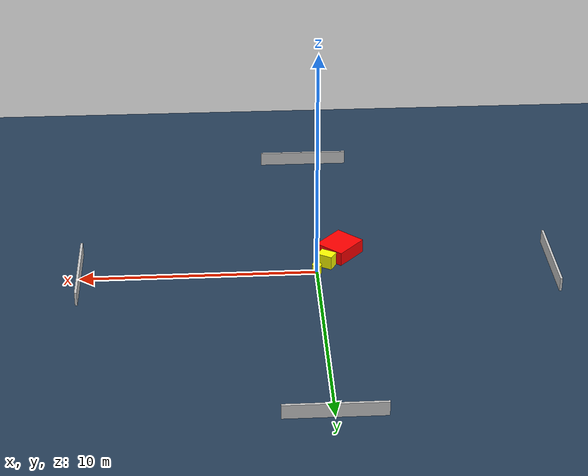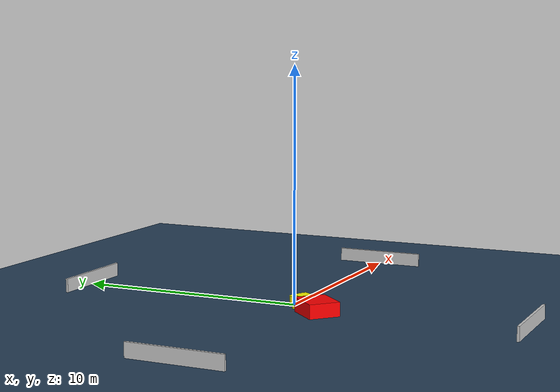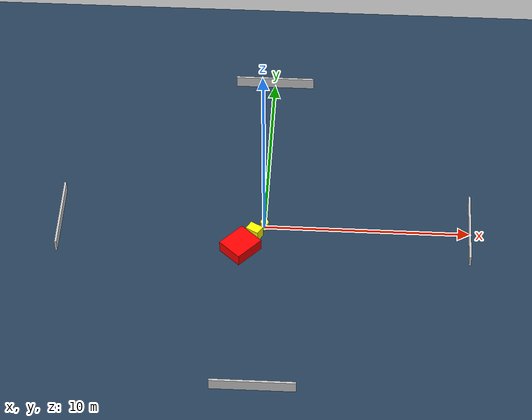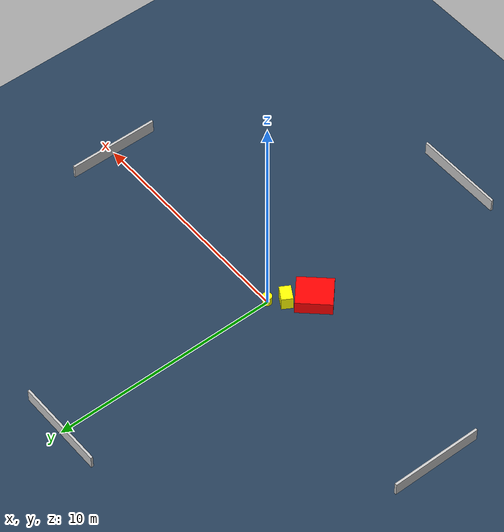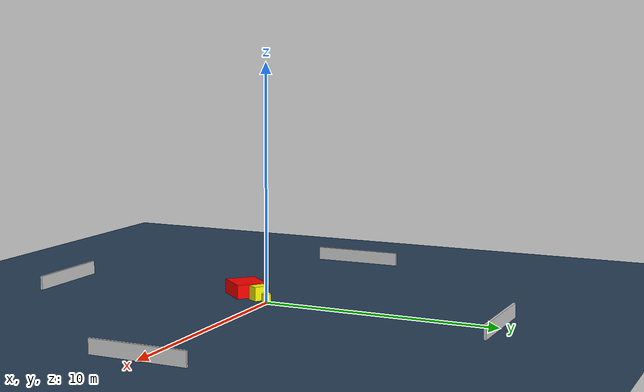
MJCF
<?xml version="1.0" ?>
<mujoco model="generated_environment">
  <option timestep="0.01" integrator="RK4" cone="elliptic"/>
  <default>
    <geom density="1"/>
  </default>
  <asset>
    <texture builtin="gradient" height="3072" name="skybox" rgb1="0.3 0.5 0.7" rgb2="0 0 0" type="skybox" width="512"/>
    <texture builtin="checker" height="300" name="groundplane" rgb1="0.2 0.3 0.4" rgb2="0.1 0.2 0.3" type="2d" width="300"/>
    <material name="groundplane" reflectance="0.2" texrepeat="5 5" texture="groundplane"/>
  </asset>
  <worldbody>
    <light dir="0 0 -1" directional="true" pos="0 0 1.5"/>
    <geom condim="3" friction="0.5 0.005 0.001" material="groundplane" name="floor" pos="0 0 0" size="0 0 0.05" type="plane"/>
    <body name="walls">
      <geom name="wall_1" condim="4" pos="-10.0 0.0 0.3" rgba="0.800000011920929 0.800000011920929 0.800000011920929 1.0" size="0.05 2.0 0.3" type="box"/>
      <geom name="wall_2" condim="4" pos="10.0 0.0 0.3" rgba="0.800000011920929 0.800000011920929 0.800000011920929 1.0" size="0.05 2.0 0.3" type="box"/>
      <geom name="wall_3" condim="4" pos="0.0 -10.0 0.3" rgba="0.800000011920929 0.800000011920929 0.800000011920929 1.0" size="2.0 0.05 0.3" type="box"/>
      <geom name="wall_4" condim="4" pos="0.0 10.0 0.3" rgba="0.800000011920929 0.800000011920929 0.800000011920929 1.0" size="2.0 0.05 0.3" type="box"/>
    </body>
    <body name="robot">
      <joint name="joint_x" type="slide" pos="0 0 0" axis="1 0 0"/>
      <joint name="joint_y" type="slide" pos="0 0 0" axis="0 1 0"/>
      <geom name="robot" type="cylinder" pos="0.0 0.0 0.2" size="0.2 0.2 0.0" mass="5.0" friction="1.0 0.005 0.0001" condim="4" rgba="1.0 1.0 0.0 1.0"/>
    </body>
    <body name="obstacle_1_movable">
      <geom name="obstacle_1_movable" condim="4" pos="-0.45598890110885704 -0.572280723759362 0.3" euler="0 0 59.66964382248071" friction="0.0 0.005 0.001" rgba="1.0 1.0 0.0 1.0" size="0.2444468947861973 0.3365022807004211 0.3" type="box" mass="0.1"/>
      <joint type="free"/>
    </body>
    <body name="obstacle_2_static">
      <geom name="obstacle_2_static" condim="4" pos="-1.0858237390159684 -1.5042202090327474 0.3" euler="0 0 317.49969576818023" friction="0.0 0.005 0.001" rgba="1.0 0.0 0.0 1.0" size="0.66833546426879 0.7599361177801871 0.3" type="box"/>
    </body>
  </worldbody>
  <actuator>
    <motor name="actuator_x" joint="joint_x" gear="1" ctrlrange="-1 1"/>
    <motor name="actuator_y" joint="joint_y" gear="1" ctrlrange="-1 1"/>
  </actuator>
</mujoco>
